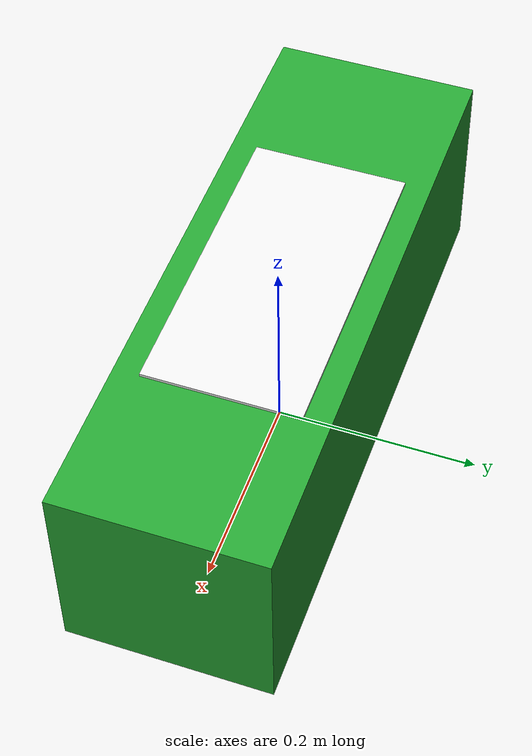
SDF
<?xml version="1.0" ?>
<sdf version="1.5">
  <model name="mbzirc_green_brick">
      <static>0</static>
	  <link name="link">
		  <pose>0 0 0.1 0 0 0</pose>
		  <inertial>
	          <mass>0.485</mass>
	          <inertia>
	            <ixx>0.003220</ixx>
	            <ixy>0</ixy>
	            <ixz>0</ixz>
	            <iyy>0.016102</iyy>
	            <iyz>0</iyz>
	            <izz>0.016102</izz>
	          </inertia>
          </inertial>
		  <visual name="main_box">
			<geometry>
		      <box>
		       	<size>0.6 0.2 0.2</size>
		      </box>
		   	</geometry>
		    <material>
              <script>
                <uri>file://media/materials/scripts/gazebo.material</uri>
                <name>Gazebo/Green</name>
              </script>
            </material>
          </visual>
          <visual name="white_plate">
          	<pose>0 0 0.1 0 0 0</pose>
			<geometry>
		      <box>
		       	<size>0.3 0.15 0.006</size>
		      </box>
		   	</geometry>
		    <material>
              <script>
                <uri>file://media/materials/scripts/gazebo.material</uri>
                <name>Gazebo/White</name>
              </script>
            </material>
          </visual>
	      <collision name="collision">
	        <pose>0 0 0 0 0 0</pose>
	        <geometry>
		      <box>
		       	<size>0.6 0.2 0.2</size>
		      </box>
		   	</geometry>
	        <max_contacts>10</max_contacts>
	        <surface>
	            <contact>
	              <ode/>
	            </contact>
	            <bounce/>
	            <friction>
	              <ode/>
	            </friction>
            </surface>
	      </collision>
	      <self_collide>0</self_collide>
          <kinematic>0</kinematic>
          <gravity>1</gravity>
	  </link>
  </model>
</sdf>
